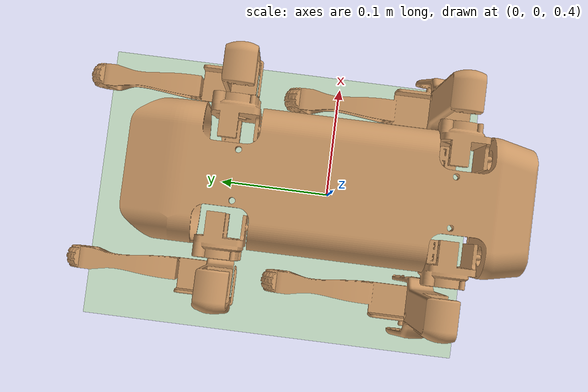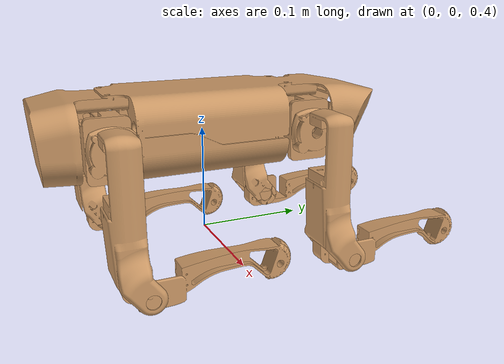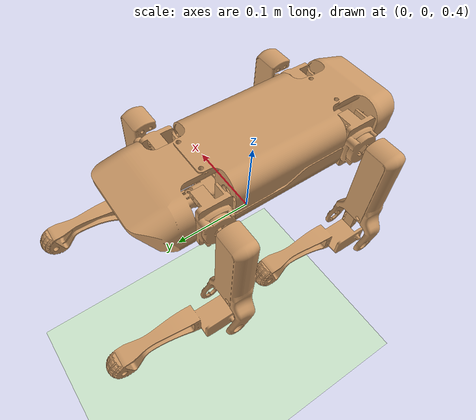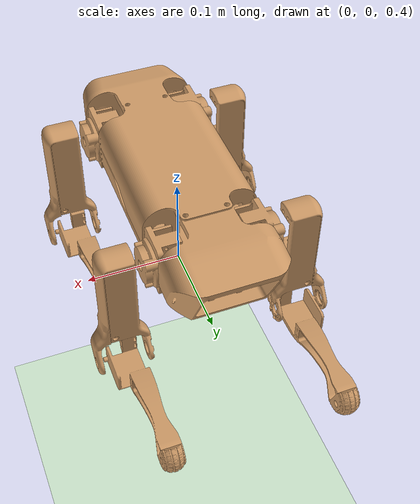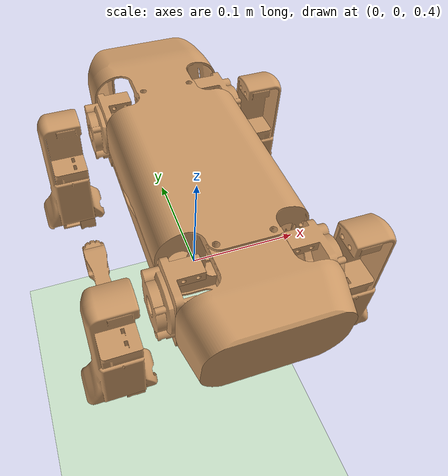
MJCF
<mujoco model="qrpfra">
    <include file="qrpfra_v3.xml"/>

    <default>
        <joint armature="1" damping="1" limited="true"/>
        <geom conaffinity="0" condim="3" density="1.0" friction="1 0.5 0.5" margin="0.01" rgba="0.8 0.6 0.4 1"/>
    </default>

    <asset>
        <texture builtin="gradient" height="100" rgb1="1 1 1" rgb2="0 0 0" type="skybox" width="100"/>
        <texture builtin="flat" height="1278" mark="cross" markrgb="1 1 1" name="texgeom" random="0.01" rgb1="0 0 0.4" rgb2="0.8 0.6 0.4" type="cube" width="127"/>
        <texture builtin="checker"  name="texplane" rgb1="0.02 0.02 0.12" rgb2="0.98 0.98 0.88" type="2d" width="100" height="100"/>
        <material name="MatPlane" reflectance="0.8" shininess="1" specular="1" texrepeat="60 60" texture="texplane"/>
    </asset>

    <worldbody>
        <light cutoff="100" diffuse="1 1 1" dir="-0 0 -1.3" directional="true" exponent="1" pos="0 0 1.3" specular=".1 .1 .1"/>
        <!--geom conaffinity="1" condim="3" friction="1 0.6 0.6" material="MatPlane" name="floor" pos="0 0 -0.05" rgba="0.8 0.9 0.8 1" size="50 50 0.05" type="box"/-->
        <geom conaffinity="1" condim="3" material="MatPlane" name="floor" pos="0 0 0" rgba="0.8 0.9 0.8 1" size="40 40 40" type="plane"/>
        <!--geom name="floor" size="0 0 0.05" type="plane" material="plane"/-->
    </worldbody>
</mujoco>

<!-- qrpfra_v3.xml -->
<mujoco model="qrpfra">
    <compiler angle="degree" coordinate="local" inertiafromgeom="true" convexhull="true"/>
    <option integrator="RK4" timestep="0.01" gravity="0 0 -9.81" density="1.24"/>

    <default>
        <joint armature="1" damping="1" limited="true"/>
        <geom conaffinity="1" condim="3" density="1.24" friction="1 0.5 0.5" margin="0.01" rgba="0.8 0.6 0.4 1"/>

        <default class="servo_motors">
            <position ctrllimited="true" ctrlrange="-1 1" kp="90" gear="0.95"/>
        </default>

        <default class="joint_def">
            <joint pos="0 0 0" range="-60 60" type="hinge" damping="12"/>
        </default>

    </default>

    <asset>
        <mesh name="main_body" file="/Users/deniz/PycharmProjects/QRPfRA_Senior_Project/QRPfRA_sim_body_STLs/QRPfRA_body_m.stl"/>
        <mesh name="Left_Hind_Limb" file="/Users/deniz/PycharmProjects/QRPfRA_Senior_Project/QRPfRA_sim_body_STLs/QRPfRA_left_hindlimb_m.stl"/>
        <mesh name="Left_MidLimb" file="/Users/deniz/PycharmProjects/QRPfRA_Senior_Project/QRPfRA_sim_body_STLs/QRPfRA_left_midlimb_m.stl"/>
        <mesh name="Left_Wrist" file="/Users/deniz/PycharmProjects/QRPfRA_Senior_Project/QRPfRA_sim_body_STLs/QRPfRA_left_wrist_m.stl"/>
        <mesh name="Right_Hind_Limb" file="/Users/deniz/PycharmProjects/QRPfRA_Senior_Project/QRPfRA_sim_body_STLs/QRPfRA_right_hindlimb_m.stl"/>
        <mesh name="Right_MidLimb" file="/Users/deniz/PycharmProjects/QRPfRA_Senior_Project/QRPfRA_sim_body_STLs/QRPfRA_right_midlimb_m.stl"/>
        <mesh name="Right_Wrist" file="/Users/deniz/PycharmProjects/QRPfRA_Senior_Project/QRPfRA_sim_body_STLs/QRPfRA_right_wrist_m.stl"/>
    </asset>

    <worldbody>
        <camera name="track" mode="trackcom" pos="0 -1 0.3" xyaxes="1 0 0 0 0 1"/>

        <body name="base_link" pos="0 0 0.5">
            <geom type="mesh" mesh="main_body" mass="2" friction="0.3" contype="1" conaffinity="1" density="1240" />
            <joint limited="false" margin="0.01" name="root" pos="0 0 0" type="free" stiffness="0" damping="0" frictionloss="0" armature="0"/>

            <body name="front_Left_Hind_Limb" pos="-0.04 0.065 0.013">
                <joint class="joint_def" axis="0 1 0" name="FL_hind_to_base" />
                <geom type="mesh" mesh="Left_Hind_Limb" mass="0.150" contype="1" conaffinity="1" density="1240"/>

                <body name="front_Left_MidLimb" pos="-0.025 0.023 -0.0105" euler="90 0 0">
                    <joint class="joint_def" axis="1 0 0" name="FL_mid_to_base" />
                    <geom type="mesh" mesh="Left_MidLimb" mass="0.350" contype="1" conaffinity="1" density="1240"/>

                    <body name="front_Left_Wrist" pos="-0.005 -0.107 -0.013" euler="-90 0 0">
                        <joint class="joint_def" axis="1 0 0" name="FL_wrist_to_mid" />
                        <geom type="mesh" mesh="Left_Wrist" mass="0.350" contype="1" conaffinity="1" density="1240"/>

                    </body>
                </body>
            </body>

            <body name="rear_Left_Hind_Limb" pos="-0.04 -0.12 0.013">
                <joint class="joint_def" axis="0 1 0" name="RL_hind_to_base" />
                <geom type="mesh" mesh="Left_Hind_Limb" mass="0.150" contype="1" conaffinity="1" density="1240"/>

                <body name="rear_Left_MidLimb" pos="-0.025 0.023 -0.0105" euler="90 0 0">
                    <joint class="joint_def" axis="1 0 0" name="RL_mid_to_base" />
                    <geom type="mesh" mesh="Left_MidLimb" mass="0.350" contype="1" conaffinity="1" density="1240"/>

                    <body name="rear_Left_Wrist" pos="-0.005 -0.107 -0.013" euler="-90 0 0">
                        <joint class="joint_def" axis="1 0 0" name="RL_wrist_to_mid" />
                        <geom type="mesh" mesh="Left_Wrist" mass="0.350" contype="1" conaffinity="1" density="1240"/>

                    </body>
                </body>
            </body>

            <body name="front_Right_Hind_Limb" pos="0.04 0.065 0.013">
                <joint class="joint_def" axis="0 1 0" name="FR_hind_to_base" />
                <geom type="mesh" mesh="Right_Hind_Limb" mass="0.150" contype="1" conaffinity="1" density="1240"/>

                <body name="front_Right_MidLimb" pos="0.025 0.023 -0.0105" euler="90 0 0">
                    <joint class="joint_def" axis="1 0 0" name="FR_mid_to_base"  />
                    <geom type="mesh" mesh="Right_MidLimb" mass="0.350" contype="1" conaffinity="1" density="1240"/>

                    <body name="front_Right_Wrist" pos="0.005 -0.107 -0.013" euler="-90 0 0">
                        <joint class="joint_def" axis="1 0 0" name="FR_wrist_to_mid" />
                        <geom type="mesh" mesh="Right_Wrist" mass="0.350" contype="1" conaffinity="1" density="1240"/>

                    </body>
                </body>
            </body>

            <body name="rear_Right_Hind_Limb" pos="0.04 -0.12 0.013">
                <joint class="joint_def" axis="0 1 0" name="RR_hind_to_base" />
                <geom type="mesh" mesh="Right_Hind_Limb" mass="0.150" contype="1" conaffinity="1" density="1240"/>

                <body name="rear_Right_MidLimb" pos="0.025 0.023 -0.0105" euler="90 0 0">
                    <joint class="joint_def" axis="1 0 0" name="RR_mid_to_base"  />
                    <geom type="mesh" mesh="Right_MidLimb" mass="0.350" contype="1" conaffinity="1" density="1240"/>

                    <body name="rear_Right_Wrist" pos="0.005 -0.107 -0.013" euler="-90 0 0">
                        <joint class="joint_def" axis="1 0 0" name="RR_wrist_to_mid" />
                        <geom type="mesh" mesh="Right_Wrist" mass="0.350" contype="1" conaffinity="1" density="1240"/>
                    </body>
                </body>
            </body>

        </body>
    </worldbody>

    <contact>
        <exclude body1="base_link" body2="front_Left_Hind_Limb"/>
        <exclude body1="base_link" body2="rear_Left_Hind_Limb"/>
        <exclude body1="base_link" body2="front_Right_Hind_Limb"/>
        <exclude body1="base_link" body2="rear_Right_Hind_Limb"/>

        <exclude body1="base_link" body2="front_Left_MidLimb"/>
        <exclude body1="base_link" body2="rear_Left_MidLimb"/>
        <exclude body1="base_link" body2="front_Right_MidLimb"/>
        <exclude body1="base_link" body2="rear_Right_MidLimb"/>
    </contact>

    <actuator>
        <position class="servo_motors" joint="FL_hind_to_base" name="FL_Hind2Base"/>
        <position class="servo_motors" joint="FL_mid_to_base" name="FL_Mid2Hind"/>
        <position class="servo_motors" joint="FL_wrist_to_mid" name="FL_Wrist2Mid"/>

        <position class="servo_motors" joint="RL_hind_to_base" name="RL_Hind2Base"/>
        <position class="servo_motors" joint="RL_mid_to_base" name="RL_Mid2Hind"/>
        <position class="servo_motors" joint="RL_wrist_to_mid" name="RL_Wrist2Mid"/>

        <position class="servo_motors" joint="FR_hind_to_base" name="FR_Hind2Base"/>
        <position class="servo_motors" joint="FR_mid_to_base" name="FR_Mid2Hind"/>
        <position class="servo_motors" joint="FR_wrist_to_mid" name="FR_Wrist2Mid"/>

        <position class="servo_motors" joint="RR_hind_to_base" name="RR_Hind2Base"/>
        <position class="servo_motors" joint="RR_mid_to_base" name="RR_Mid2Hind"/>
        <position class="servo_motors" joint="RR_wrist_to_mid" name="RR_Wrist2Mid"/>
    </actuator>

</mujoco>
